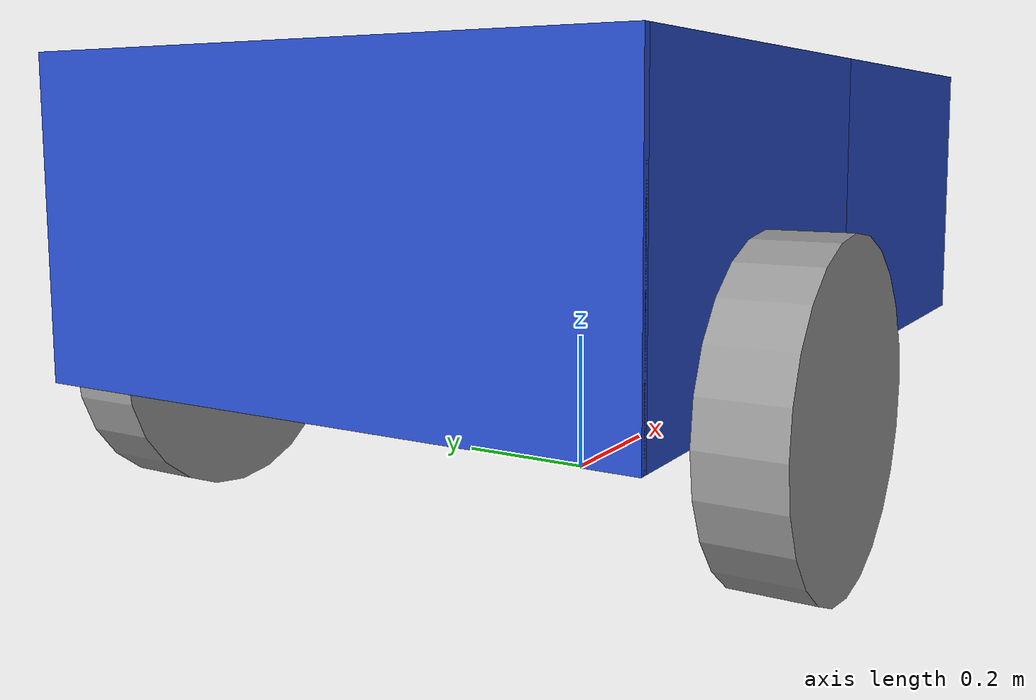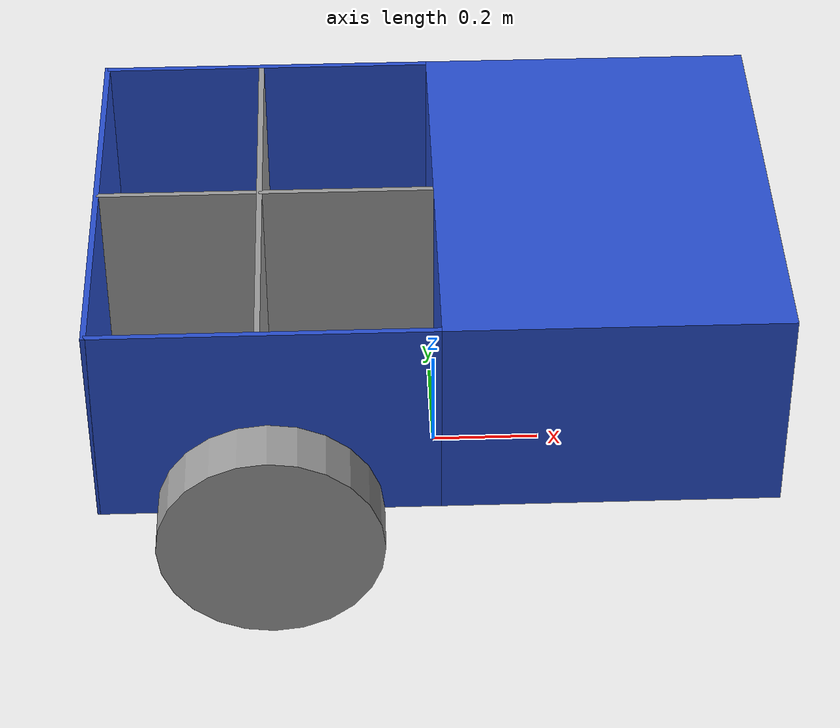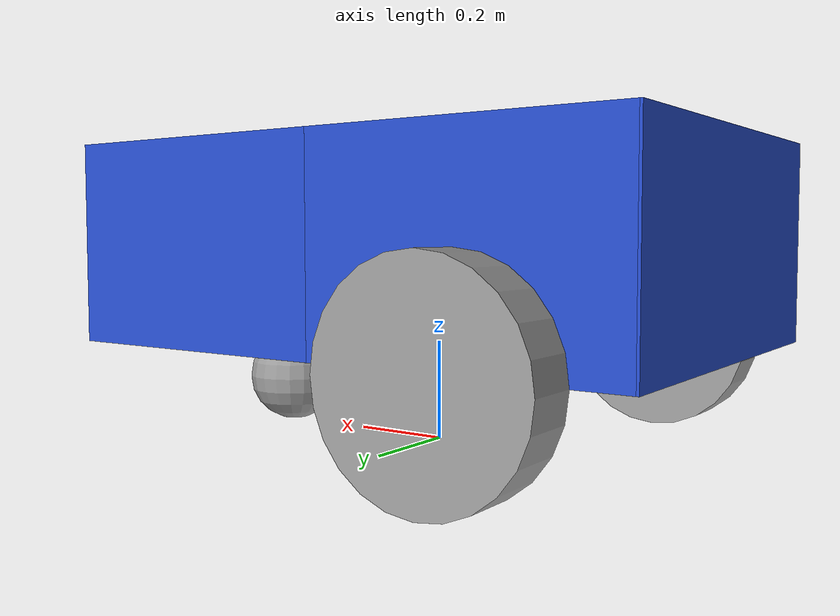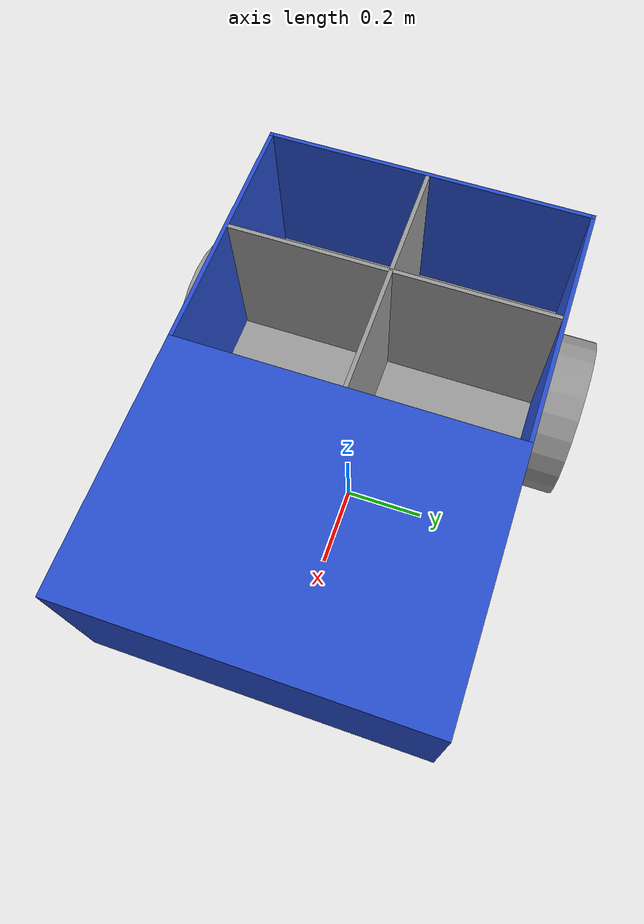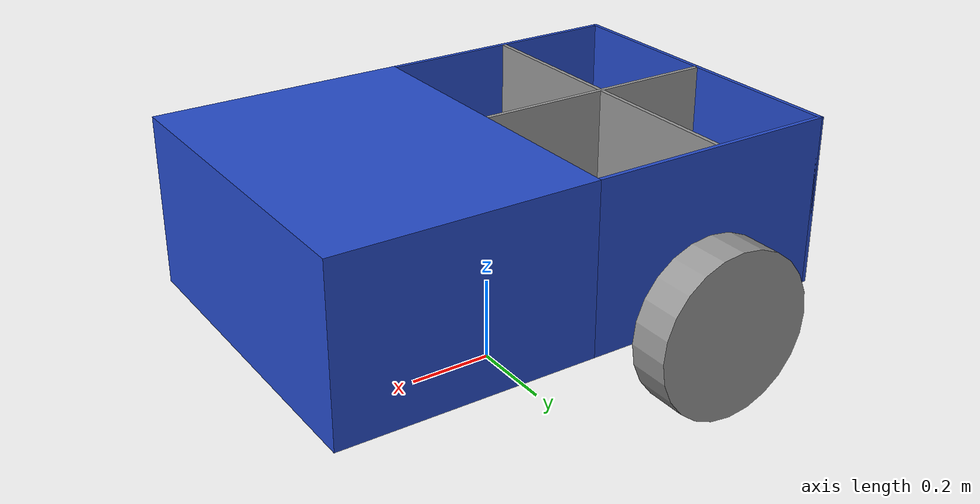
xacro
<?xml version="1.0"?>
<robot xmlns:xacro="http://www.ros.org/wiki/xacro">

    <xacro:property name = "base_length" value = "1.2" />
    <xacro:property name = "base_width" value = ".8" />
    <xacro:property name = "base_height" value = ".4" />
    <xacro:property name = "wheel_radius" value = ".2" />
    <xacro:property name = "wheel_length" value = ".1" />

    <xacro:property name = "base_length_h" value = ".6" />
    <xacro:property name = "base_thickness" value = ".01" />

    <link name="base_footprint"/>

    <link name="base_link">
        <visual>
            <geometry>
                <box size="${base_length_h} ${base_width} ${base_height}"/>
            </geometry>
            <origin xyz = "${base_length_h/2} 0 ${base_height/2}" rpy="0 0 0" />
            <material name="blue"/>
        </visual>

        <collision>
            <geometry>
                <box size="${base_length_h} ${base_width} ${base_height}"/>
            </geometry>
            <origin xyz = "${base_length_h/2} 0 ${base_height/2}" rpy="0 0 0" />
        </collision>
        <xacro:box_inertia m = "5.0" x = "${base_length_h}" y = "${base_width}" z = "${base_height}"
                            o_xyz="${base_length_h/2} 0 ${base_height/2}" o_rpy="0 0 0"/>
    </link>

    <link name="base_link_floor">
        <visual>
            <geometry>
                <box size="${base_length_h} ${base_width-2*base_thickness} ${base_thickness}"/>
            </geometry>
            <origin xyz = "${-base_length_h/2} 0 ${base_thickness/2}" rpy="0 0 0" />
            <material name="grey"/>
        </visual>

        <collision>
            <geometry>
                <box size="${base_length_h} ${base_width-2*base_thickness} ${base_thickness}"/>
            </geometry>
            <origin xyz = "${-base_length_h/2} 0 ${base_thickness/2}" rpy="0 0 0" />
        </collision>
        <xacro:box_inertia m = "2" x = "${base_length_h}" y = "${base_width-2*base_thickness}" z = "${base_thickness}"
                            o_xyz="${-base_length_h/2} 0 ${base_thickness/2}" o_rpy="0 0 0"/>
    </link>

    <link name="base_link_wall_left">
        <visual>
            <geometry>
                <box size="${base_length_h} ${base_thickness} ${base_height}"/>
            </geometry>
            <origin xyz = "${-base_length_h/2} ${base_width/2-base_thickness/2} ${base_height/2}" rpy="0 0 0" />
            <material name="blue"/>
        </visual>

        <collision>
            <geometry>
                <box size="${base_length_h} ${base_thickness} ${base_height}"/>
            </geometry>
            <origin xyz = "${-base_length_h/2} ${base_width/2-base_thickness/2} ${base_height/2}" rpy="0 0 0" />
        </collision>
        <xacro:box_inertia m = "2" x = "${base_length_h}" y = "${base_thickness}" z = "${base_height}"
                            o_xyz="${-base_length_h/2} ${base_width/2-base_thickness/2} ${base_height/2}" o_rpy="0 0 0"/>
    </link>

    <link name="base_link_wall_right">
        <visual>
            <geometry>
                <box size="${base_length_h} ${base_thickness} ${base_height}"/>
            </geometry>
            <origin xyz = "${-base_length_h/2} -${base_width/2-base_thickness/2} ${base_height/2}" rpy="0 0 0" />
            <material name="blue"/>
        </visual>

        <collision>
            <geometry>
                <box size="${base_length_h} ${base_thickness} ${base_height}"/>
            </geometry>
            <origin xyz = "${-base_length_h/2} -${base_width/2-base_thickness/2} ${base_height/2}" rpy="0 0 0" />
        </collision>
        <xacro:box_inertia m = "2" x = "${base_length_h}" y = "${base_thickness}" z = "${base_height}"
                            o_xyz="${-base_length_h/2} -${base_width/2-base_thickness/2} ${base_height/2}" o_rpy="0 0 0"/>
    </link>

    <link name="base_link_wall_rear_mid">
        <visual>
            <geometry>
                <box size="${base_thickness} ${base_width-base_thickness*2} ${base_height}"/>
            </geometry>
            <origin xyz = "-${base_length_h/2+base_thickness} 0 ${base_height/2}" rpy="0 0 0" />
            <material name="grey"/>
        </visual>

        <collision>
            <geometry>
                <box size="${base_thickness} ${base_width-base_thickness*2} ${base_height}"/>
            </geometry>
            <origin xyz = "-${base_length_h/2+base_thickness} 0 ${base_height/2}" rpy="0 0 0" />
        </collision>
        <xacro:box_inertia m = "2" x = "${base_thickness}" y = "${base_width-base_thickness*2}" z = "${base_height}"
                            o_xyz="-${base_length_h/2+base_thickness} 0 ${base_height/2}" o_rpy="0 0 0"/>
    </link>

    <link name="base_link_wall_rear_end">
        <visual>
            <geometry>
                <box size="${base_thickness} ${base_width} ${base_height}"/>
            </geometry>
            <origin xyz = "-${base_length_h} 0 ${base_height/2}" rpy="0 0 0" />
            <material name="blue"/>
        </visual>

        <collision>
            <geometry>
                <box size="${base_thickness} ${base_width} ${base_height}"/>
            </geometry>
            <origin xyz = "-${base_length_h} 0 ${base_height/2}" rpy="0 0 0" />
        </collision>
        <xacro:box_inertia m = "2" x = "${base_thickness}" y = "${base_width}" z = "${base_height}"
                            o_xyz="-${base_length_h} 0 ${base_height/2}" o_rpy="0 0 0"/>
    </link>

    <link name="base_link_wall_split">
        <visual>
            <geometry>
                <box size="${base_length_h} ${base_thickness} ${base_height}"/>
            </geometry>
            <origin xyz = "${-base_length_h/2} 0 ${base_height/2}" rpy="0 0 0" />
            <material name="grey"/>
        </visual>

        <collision>
            <geometry>
                <box size="${base_length_h} ${base_thickness} ${base_height}"/>
            </geometry>
            <origin xyz = "${-base_length_h/2} 0 ${base_height/2}" rpy="0 0 0" />
        </collision>
        <xacro:box_inertia m = "2" x = "${base_length_h}" y = "${base_thickness}" z = "${base_height}"
                            o_xyz="${-base_length_h/2} 0 ${base_height/2}" o_rpy="0 0 0"/>
    </link>

    <xacro:macro name = "wheel_link" params="prefix">
        <link name="${prefix}_wheel_link">
            <visual>
                <geometry>
                    <cylinder radius = "${wheel_radius}" length = "${wheel_length}"/>
                </geometry>
                <origin xyz = "0 0 0" rpy = "${pi / 2.0} 0 0" />
                <material name = "grey"/>
            </visual>
            <collision>
                <geometry>
                    <sphere radius = "${wheel_radius}"/>
                </geometry>
                <origin xyz = "0 0 0" rpy = "${pi / 2.0} 0 0" />
            </collision>
            <xacro:wheel_inertia m = "1" r = "${wheel_radius}" l = "${wheel_length}"
                                 o_xyz="0 0 0" o_rpy="${pi / 2.0} 0 0"/>
        </link>
    </xacro:macro>

    <xacro:wheel_link prefix="right"/>
    <xacro:wheel_link prefix="left"/>

    <link name="caster_wheel_link">
        <visual>
            <geometry>
                <sphere radius = "${wheel_radius/2}"/>
            </geometry>
            <origin xyz = "0 0 0" rpy="0 0 0" />
            <material name="grey"/>
        </visual>

        <collision>
            <geometry>
                <sphere radius = "${wheel_radius/2}"/>
            </geometry>
            <origin xyz = "0 0 0" rpy = "${pi / 2.0} 0 0" />
        </collision>

        <xacro:sphere_inertia m = ".05" r = "${wheel_radius}" o_xyz="0 0 0" o_rpy="0 0 0"/>
    </link>

    <joint name="base_joint" type="fixed">
        <parent link = "base_footprint"/>
        <child link="base_link_floor"/>
        <origin xyz = "0 0 ${wheel_radius}" rpy = "0 0 0"/>
    </joint>

    <joint name="base_joint_floor" type="fixed">
        <parent link = "base_footprint"/>
        <child link="base_link"/>
        <origin xyz = "0 0 ${wheel_radius}" rpy = "0 0 0"/>
    </joint>

    <joint name="base_joint_left_wall" type="fixed">
        <parent link = "base_footprint"/>
        <child link="base_link_wall_left"/>
        <origin xyz = "0 0 ${wheel_radius}" rpy = "0 0 0"/>
    </joint>

    <joint name="base_joint_right_wall" type="fixed">
        <parent link = "base_footprint"/>
        <child link="base_link_wall_right"/>
        <origin xyz = "0 0 ${wheel_radius}" rpy = "0 0 0"/>
    </joint>

    <joint name="base_joint_rear_wall_mid" type="fixed">
        <parent link = "base_footprint"/>
        <child link="base_link_wall_rear_mid"/>
        <origin xyz = "0 0 ${wheel_radius}" rpy = "0 0 0"/>
    </joint>

    <joint name="base_joint_rear_wall_end" type="fixed">
        <parent link = "base_footprint"/>
        <child link="base_link_wall_rear_end"/>
        <origin xyz = "0 0 ${wheel_radius}" rpy = "0 0 0"/>
    </joint>

    <joint name="base_joint_rear_wall_split" type="fixed">
        <parent link = "base_footprint"/>
        <child link="base_link_wall_split"/>
        <origin xyz = "0 0 ${wheel_radius}" rpy = "0 0 0"/>
    </joint>

    <joint name="base_right_wheel_joint" type="continuous">
        <parent link = "base_link"/>
        <child link="right_wheel_link"/>
        <origin xyz = "${-base_length/4} ${-(base_width/2 + wheel_length /2)} 0" rpy = "0 0 0"/>
        <axis xyz = "0 1 0"/>
    </joint>

    <joint name="base_left_wheel_joint" type="continuous">
        <parent link = "base_link"/>
        <child link="left_wheel_link"/>
        <origin xyz = "${-base_length/4} ${base_width/2 + wheel_length /2} 0" rpy = "0 0 0"/>
        <axis xyz = "0 1 0"/>
    </joint>

    <joint name="base_caster_wheel_joint" type="fixed">
        <parent link = "base_link"/>
        <child link="caster_wheel_link"/>
        <origin xyz = "${base_length/3} 0 ${-wheel_radius/2}" rpy = "0 0 0"/>
    </joint>

</robot>
